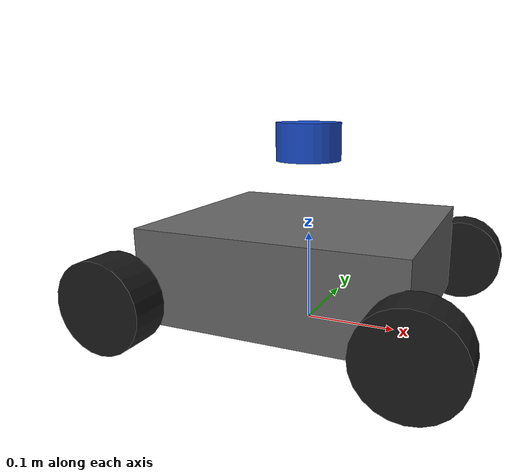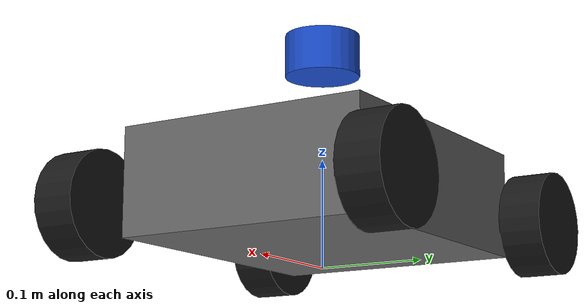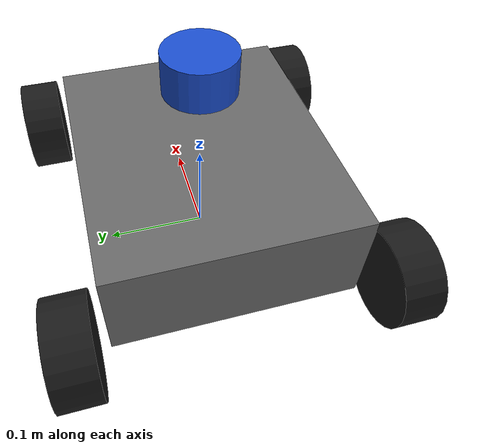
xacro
<?xml version="1.0"?>
<robot xmlns:xacro="http://www.ros.org/wiki/xacro" name="slam_robot">

  <!-- ================= DIMENSIONS TO ADJUST ================= -->

  <!-- Half-wheelbases: distance from the chassis center to the wheel AXIS.
       WHEELBASE_X = front/rear distance, WHEELBASE_Y = left/right
       (chassis center -> wheel center, NOT wheel to wheel). -->
  <xacro:property name="wheelbase_x" value="0.15"/>   <!-- TODO: MEASURE (m) -->
  <xacro:property name="wheelbase_y" value="0.15"/>   <!-- TODO: MEASURE (m) -->

  <!-- Mecanum wheels, 97 mm diameter -->
  <xacro:property name="wheel_radius" value="0.0485"/>
  <xacro:property name="wheel_width"  value="0.040"/>  <!-- TODO: MEASURE (m) -->

  <!-- Chassis (simple box for the visual) -->
  <xacro:property name="chassis_length" value="0.28"/> <!-- TODO: MEASURE (m) -->
  <xacro:property name="chassis_width"  value="0.24"/> <!-- TODO: MEASURE (m) -->
  <xacro:property name="chassis_height" value="0.10"/> <!-- TODO: MEASURE (m) -->
  <!-- Height of the chassis CENTER above the ground -->
  <xacro:property name="chassis_z_offset" value="${wheel_radius + 0.02}"/> <!-- TODO: MEASURE -->

  <!-- LiDAR: position of the optical center relative to base_link.
       The X2 is assumed centered on the chassis (x=0, y=0). -->
  <xacro:property name="lidar_x" value="0.0"/>         <!-- TODO: MEASURE if off-center (m) -->
  <xacro:property name="lidar_y" value="0.0"/>         <!-- TODO: MEASURE if off-center (m) -->
  <!-- Laser plane height RELATIVE TO THE GROUND; subtract the chassis offset -->
  <xacro:property name="lidar_height_from_ground" value="0.20"/> <!-- TODO: MEASURE (m) -->
  <xacro:property name="lidar_z" value="${lidar_height_from_ground - chassis_z_offset}"/>
  <!-- LiDAR rotation about Z if its "front" is not aligned with the robot's
       front (e.g. 3.14159 if it is mounted backwards). -->
  <xacro:property name="lidar_yaw" value="0.0"/>       <!-- TODO: CHECK (rad) -->

  <!-- IMU MPU-6050: position relative to base_link -->
  <xacro:property name="imu_x" value="0.0"/>           <!-- TODO: MEASURE (m) -->
  <xacro:property name="imu_y" value="0.0"/>           <!-- TODO: MEASURE (m) -->
  <xacro:property name="imu_z" value="0.0"/>           <!-- TODO: MEASURE (m) -->

  <!-- ================= COLORS ================= -->
  <material name="gris_chassis"><color rgba="0.4 0.4 0.4 1.0"/></material>
  <material name="noir_roue"><color rgba="0.1 0.1 0.1 1.0"/></material>
  <material name="bleu_lidar"><color rgba="0.1 0.3 0.8 1.0"/></material>
  <material name="rouge_imu"><color rgba="0.8 0.1 0.1 1.0"/></material>

  <!-- ================= BASE ================= -->

  <!-- base_footprint: projection of base_link onto the ground (z = 0).
       This is the reference frame used by slam_toolbox and Nav2. -->
  <link name="base_footprint"/>

  <joint name="base_footprint_to_base_link" type="fixed">
    <parent link="base_footprint"/>
    <child link="base_link"/>
    <origin xyz="0 0 ${chassis_z_offset}" rpy="0 0 0"/>
  </joint>

  <link name="base_link">
    <visual>
      <geometry>
        <box size="${chassis_length} ${chassis_width} ${chassis_height}"/>
      </geometry>
      <material name="gris_chassis"/>
    </visual>
  </link>

  <!-- ================= WHEELS ================= -->

  <!-- Wheel macro: cylinder oriented along the Y axis (90 deg rotation about X).
       reflect_x = +1 front / -1 rear ; reflect_y = +1 left / -1 right -->
  <xacro:macro name="roue" params="prefix reflect_x reflect_y">
    <link name="wheel_${prefix}_link">
      <visual>
        <origin xyz="0 0 0" rpy="${pi/2} 0 0"/>
        <geometry>
          <cylinder radius="${wheel_radius}" length="${wheel_width}"/>
        </geometry>
        <material name="noir_roue"/>
      </visual>
    </link>
    <joint name="wheel_${prefix}_joint" type="fixed">
      <parent link="base_link"/>
      <child link="wheel_${prefix}_link"/>
      <!-- The wheel sits at its axis level: z brought to the axis height -->
      <origin xyz="${reflect_x * wheelbase_x} ${reflect_y * wheelbase_y} ${wheel_radius - chassis_z_offset}"
              rpy="0 0 0"/>
    </joint>
  </xacro:macro>

  <xacro:roue prefix="front_left"  reflect_x="1"  reflect_y="1"/>
  <xacro:roue prefix="front_right" reflect_x="1"  reflect_y="-1"/>
  <xacro:roue prefix="rear_left"   reflect_x="-1" reflect_y="1"/>
  <xacro:roue prefix="rear_right"  reflect_x="-1" reflect_y="-1"/>

  <!-- ================= LIDAR ================= -->

  <link name="laser_frame">
    <visual>
      <geometry>
        <!-- Approximation of the YDLIDAR X2 housing -->
        <cylinder radius="0.035" length="0.04"/>
      </geometry>
      <material name="bleu_lidar"/>
    </visual>
  </link>

  <joint name="base_link_to_laser" type="fixed">
    <parent link="base_link"/>
    <child link="laser_frame"/>
    <origin xyz="${lidar_x} ${lidar_y} ${lidar_z}" rpy="0 0 ${lidar_yaw}"/>
  </joint>

  <!-- ================= IMU ================= -->

  <link name="imu_link">
    <visual>
      <geometry>
        <box size="0.02 0.02 0.005"/>
      </geometry>
      <material name="rouge_imu"/>
    </visual>
  </link>

  <joint name="base_link_to_imu" type="fixed">
    <parent link="base_link"/>
    <child link="imu_link"/>
    <origin xyz="${imu_x} ${imu_y} ${imu_z}" rpy="0 0 0"/>
  </joint>

</robot>
